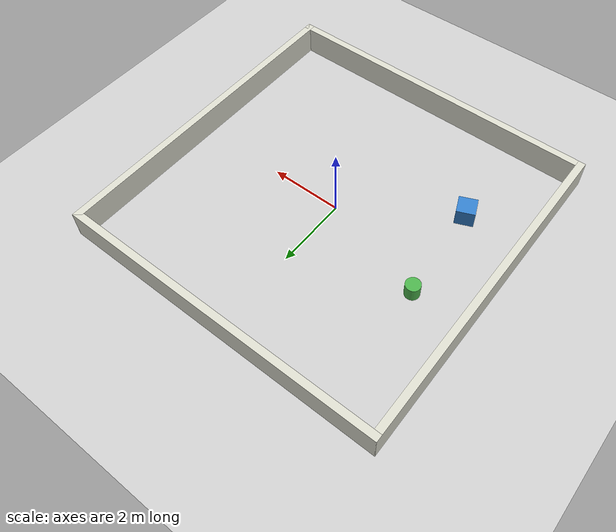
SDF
<sdf version="1.6">
 <world name="patrol_room">
  <physics type="ode">
   <max_step_size>0.004</max_step_size>
   <real_time_factor>1.0</real_time_factor>
   <real_time_update_rate>250</real_time_update_rate>
  </physics>
  <scene>
   <ambient>0.6 0.6 0.6 1</ambient>
   <background>0.75 0.85 0.95 1</background>
   <shadows>false</shadows>
  </scene>
  <include><uri>model://ground_plane</uri></include>
  <include><uri>model://sun</uri></include>
  <model name="walls">
   <static>true</static>
   <link name="link">
    <collision name="n">
     <pose>0 4.5 0.4 0 0 0</pose>
     <geometry><box><size>9.2 0.2 0.8</size></box></geometry>
    </collision>
    <visual name="n">
     <pose>0 4.5 0.4 0 0 0</pose>
     <geometry><box><size>9.2 0.2 0.8</size></box></geometry>
     <material><ambient>0.85 0.85 0.8 1</ambient><diffuse>0.85 0.85 0.8 1</diffuse></material>
    </visual>
    <collision name="s">
     <pose>0 -4.5 0.4 0 0 0</pose>
     <geometry><box><size>9.2 0.2 0.8</size></box></geometry>
    </collision>
    <visual name="s">
     <pose>0 -4.5 0.4 0 0 0</pose>
     <geometry><box><size>9.2 0.2 0.8</size></box></geometry>
     <material><ambient>0.85 0.85 0.8 1</ambient><diffuse>0.85 0.85 0.8 1</diffuse></material>
    </visual>
    <collision name="e">
     <pose>4.5 0 0.4 0 0 0</pose>
     <geometry><box><size>0.2 9.2 0.8</size></box></geometry>
    </collision>
    <visual name="e">
     <pose>4.5 0 0.4 0 0 0</pose>
     <geometry><box><size>0.2 9.2 0.8</size></box></geometry>
     <material><ambient>0.85 0.85 0.8 1</ambient><diffuse>0.85 0.85 0.8 1</diffuse></material>
    </visual>
    <collision name="w">
     <pose>-4.5 0 0.4 0 0 0</pose>
     <geometry><box><size>0.2 9.2 0.8</size></box></geometry>
    </collision>
    <visual name="w">
     <pose>-4.5 0 0.4 0 0 0</pose>
     <geometry><box><size>0.2 9.2 0.8</size></box></geometry>
     <material><ambient>0.85 0.85 0.8 1</ambient><diffuse>0.85 0.85 0.8 1</diffuse></material>
    </visual>
   </link>
  </model>
  <model name="box_a">
   <static>true</static>
   <pose>-2.8 -1.8 0.25 0 0 0.4</pose>
   <link name="link">
    <collision name="c"><geometry><box><size>0.5 0.5 0.5</size></box></geometry></collision>
    <visual name="v">
     <geometry><box><size>0.5 0.5 0.5</size></box></geometry>
     <material><ambient>0.2 0.5 0.8 1</ambient><diffuse>0.2 0.5 0.8 1</diffuse></material>
    </visual>
   </link>
  </model>
  <model name="box_b">
   <static>true</static>
   <pose>-3.0 0.9 0.2 0 0 0</pose>
   <link name="link">
    <collision name="c">
     <geometry><cylinder><radius>0.2</radius><length>0.4</length></cylinder></geometry>
    </collision>
    <visual name="v">
     <geometry><cylinder><radius>0.2</radius><length>0.4</length></cylinder></geometry>
     <material><ambient>0.3 0.7 0.3 1</ambient><diffuse>0.3 0.7 0.3 1</diffuse></material>
    </visual>
   </link>
  </model>
  <model name="overhead_camera">
   <static>true</static>
   <pose>-5.6 -5.6 6.2 0 0.70 0.785</pose>
   <link name="link">
    <sensor type="camera" name="overhead">
     <always_on>true</always_on>
     <update_rate>10</update_rate>
     <camera>
      <horizontal_fov>1.25</horizontal_fov>
      <image><width>640</width><height>480</height><format>R8G8B8</format></image>
      <clip><near>0.1</near><far>60</far></clip>
     </camera>
     <plugin name="overhead_plugin" filename="libgazebo_ros_camera.so">
      <camera_name>overhead</camera_name>
      <frame_name>overhead_link</frame_name>
     </plugin>
    </sensor>
   </link>
  </model>
 </world>
</sdf>
